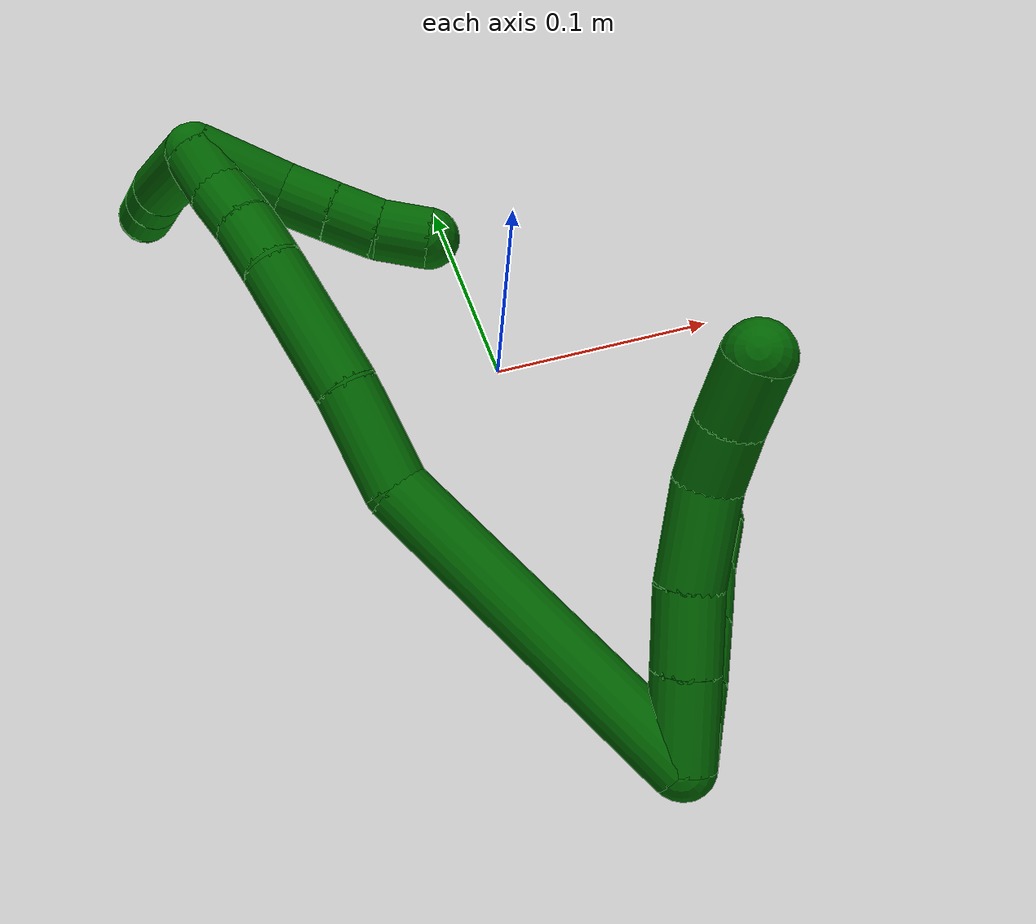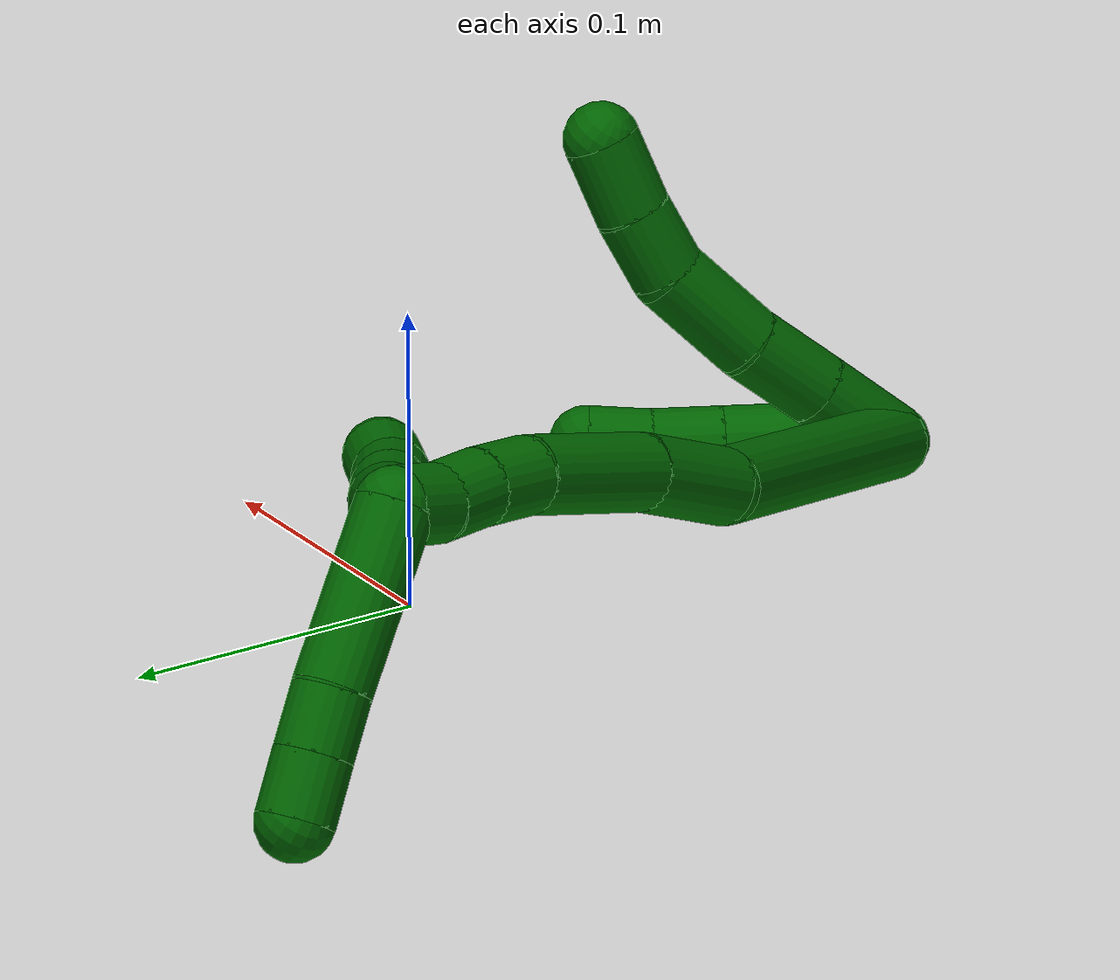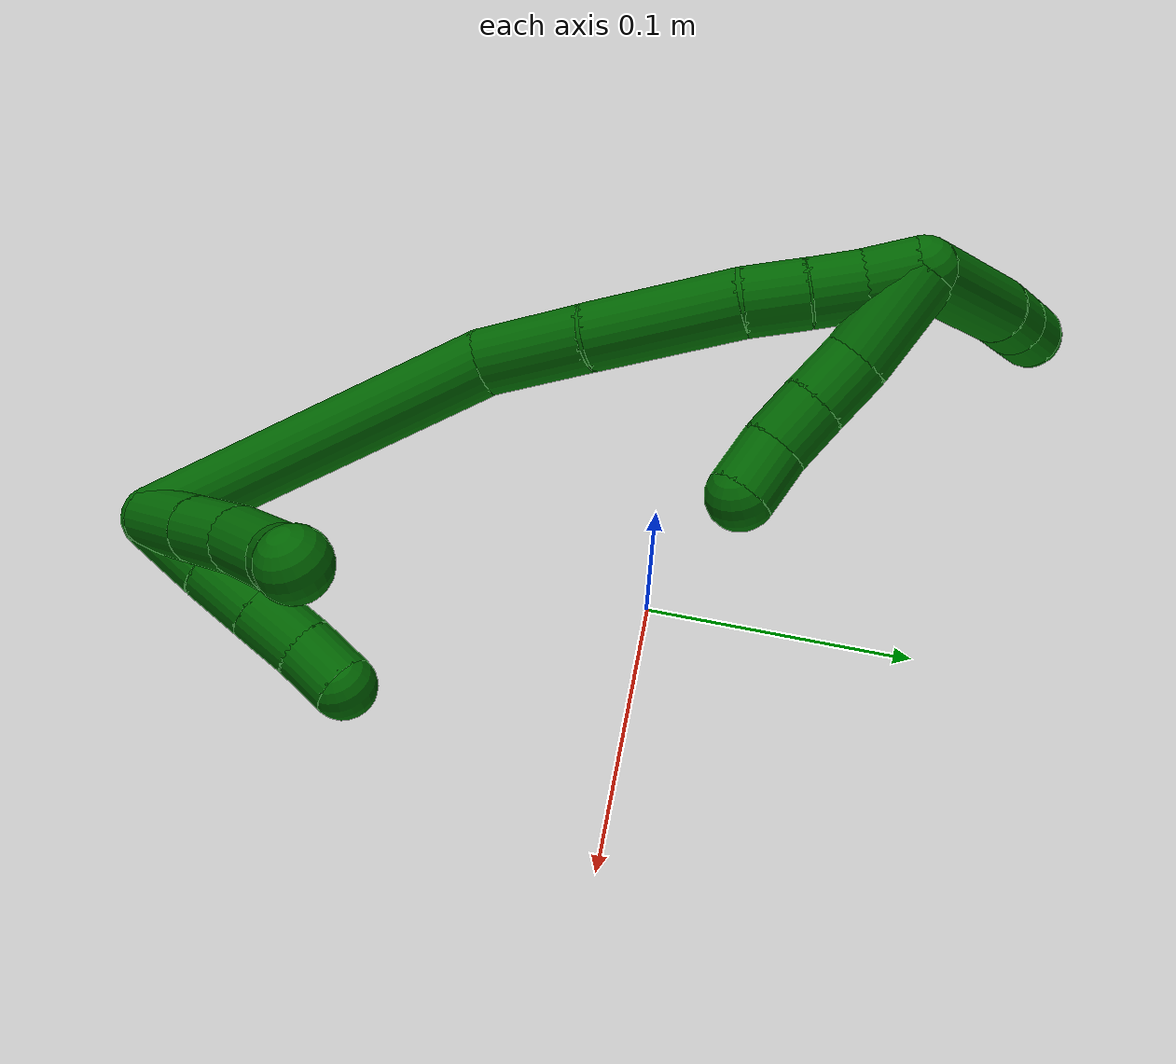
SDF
<sdf version="1.7">
 <world name="default">
  <model name="6">
   <static>0</static>
   <link name="6">
    <collision name="collision-cylinder-e_1_2_8">
     <pose>-0.00323 0.016184 0.003766 -1.34219 -0.192017 0.152642</pose>
     <geometry><cylinder><radius>0.0125</radius><length>0.033856</length></cylinder></geometry>
     <surface>
      <friction><ode><mu>1.16</mu><mu2>1.16</mu2><slip1>0</slip1><slip2>0</slip2></ode></friction>
      <contact><ode><kp>1e+06</kp><kd>1</kd><max_vel>0</max_vel><min_depth>0.001</min_depth></ode></contact>
     </surface>
    </collision>
    <visual name="visual-cylinder-e_1_2_8">
     <pose>-0.00323 0.016184 0.003766 -1.34219 -0.192017 0.152642</pose>
     <geometry><cylinder><radius>0.0125</radius><length>0.033856</length></cylinder></geometry>
     <material><ambient>0 0.392157 0.003922 1</ambient></material>
    </visual>
    <collision name="collision-cylinder-e_2_8_9">
     <pose>-0.009404 0.046649 0.010741 -1.34972 -0.198438 0.158977</pose>
     <geometry><cylinder><radius>0.0125</radius><length>0.029859</length></cylinder></geometry>
     <surface>
      <friction><ode><mu>1.16</mu><mu2>1.16</mu2><slip1>0</slip1><slip2>0</slip2></ode></friction>
      <contact><ode><kp>1e+06</kp><kd>1</kd><max_vel>0</max_vel><min_depth>0.001</min_depth></ode></contact>
     </surface>
    </collision>
    <visual name="visual-cylinder-e_2_8_9">
     <pose>-0.009404 0.046649 0.010741 -1.34972 -0.198438 0.158977</pose>
     <geometry><cylinder><radius>0.0125</radius><length>0.029859</length></cylinder></geometry>
     <material><ambient>0 0.392157 0.003922 1</ambient></material>
    </visual>
    <collision name="collision-cylinder-e_3_9_10">
     <pose>-0.013444 0.07841 0.018964 -1.29149 -0.060217 0.04538</pose>
     <geometry><cylinder><radius>0.0125</radius><length>0.036437</length></cylinder></geometry>
     <surface>
      <friction><ode><mu>1.16</mu><mu2>1.16</mu2><slip1>0</slip1><slip2>0</slip2></ode></friction>
      <contact><ode><kp>1e+06</kp><kd>1</kd><max_vel>0</max_vel><min_depth>0.001</min_depth></ode></contact>
     </surface>
    </collision>
    <visual name="visual-cylinder-e_3_9_10">
     <pose>-0.013444 0.07841 0.018964 -1.29149 -0.060217 0.04538</pose>
     <geometry><cylinder><radius>0.0125</radius><length>0.036437</length></cylinder></geometry>
     <material><ambient>0 0.392157 0.003922 1</ambient></material>
    </visual>
    <collision name="collision-cylinder-e_4_10_11">
     <pose>-0.01333 0.105925 0.030297 -1.00876 0.101678 -0.05616</pose>
     <geometry><cylinder><radius>0.0125</radius><length>0.023839</length></cylinder></geometry>
     <surface>
      <friction><ode><mu>1.16</mu><mu2>1.16</mu2><slip1>0</slip1><slip2>0</slip2></ode></friction>
      <contact><ode><kp>1e+06</kp><kd>1</kd><max_vel>0</max_vel><min_depth>0.001</min_depth></ode></contact>
     </surface>
    </collision>
    <visual name="visual-cylinder-e_4_10_11">
     <pose>-0.01333 0.105925 0.030297 -1.00876 0.101678 -0.05616</pose>
     <geometry><cylinder><radius>0.0125</radius><length>0.023839</length></cylinder></geometry>
     <material><ambient>0 0.392157 0.003922 1</ambient></material>
    </visual>
    <collision name="collision-cylinder-e_5_11_6">
     <pose>-0.010097 0.126198 0.044374 -0.922389 0.156222 -0.077752</pose>
     <geometry><cylinder><radius>0.0125</radius><length>0.02601</length></cylinder></geometry>
     <surface>
      <friction><ode><mu>1.16</mu><mu2>1.16</mu2><slip1>0</slip1><slip2>0</slip2></ode></friction>
      <contact><ode><kp>1e+06</kp><kd>1</kd><max_vel>0</max_vel><min_depth>0.001</min_depth></ode></contact>
     </surface>
    </collision>
    <visual name="visual-cylinder-e_5_11_6">
     <pose>-0.010097 0.126198 0.044374 -0.922389 0.156222 -0.077752</pose>
     <geometry><cylinder><radius>0.0125</radius><length>0.02601</length></cylinder></geometry>
     <material><ambient>0 0.392157 0.003922 1</ambient></material>
    </visual>
    <collision name="collision-cylinder-e_1_2_12">
     <pose>-0.001847 0.013509 -0.006926 -2.04454 -0.121081 0.197739</pose>
     <geometry><cylinder><radius>0.0125</radius><length>0.030585</length></cylinder></geometry>
     <surface>
      <friction><ode><mu>1.16</mu><mu2>1.16</mu2><slip1>0</slip1><slip2>0</slip2></ode></friction>
      <contact><ode><kp>1e+06</kp><kd>1</kd><max_vel>0</max_vel><min_depth>0.001</min_depth></ode></contact>
     </surface>
    </collision>
    <visual name="visual-cylinder-e_1_2_12">
     <pose>-0.001847 0.013509 -0.006926 -2.04454 -0.121081 0.197739</pose>
     <geometry><cylinder><radius>0.0125</radius><length>0.030585</length></cylinder></geometry>
     <material><ambient>0 0.392157 0.003922 1</ambient></material>
    </visual>
    <collision name="collision-cylinder-e_2_12_13">
     <pose>-0.005661 0.037738 -0.019702 -2.07038 -0.159658 0.26798</pose>
     <geometry><cylinder><radius>0.0125</radius><length>0.024741</length></cylinder></geometry>
     <surface>
      <friction><ode><mu>1.16</mu><mu2>1.16</mu2><slip1>0</slip1><slip2>0</slip2></ode></friction>
      <contact><ode><kp>1e+06</kp><kd>1</kd><max_vel>0</max_vel><min_depth>0.001</min_depth></ode></contact>
     </surface>
    </collision>
    <visual name="visual-cylinder-e_2_12_13">
     <pose>-0.005661 0.037738 -0.019702 -2.07038 -0.159658 0.26798</pose>
     <geometry><cylinder><radius>0.0125</radius><length>0.024741</length></cylinder></geometry>
     <material><ambient>0 0.392157 0.003922 1</ambient></material>
    </visual>
    <collision name="collision-cylinder-e_3_13_14">
     <pose>-0.009592 0.058641 -0.031098 -2.06941 -0.167864 0.281333</pose>
     <geometry><cylinder><radius>0.0125</radius><length>0.02352</length></cylinder></geometry>
     <surface>
      <friction><ode><mu>1.16</mu><mu2>1.16</mu2><slip1>0</slip1><slip2>0</slip2></ode></friction>
      <contact><ode><kp>1e+06</kp><kd>1</kd><max_vel>0</max_vel><min_depth>0.001</min_depth></ode></contact>
     </surface>
    </collision>
    <visual name="visual-cylinder-e_3_13_14">
     <pose>-0.009592 0.058641 -0.031098 -2.06941 -0.167864 0.281333</pose>
     <geometry><cylinder><radius>0.0125</radius><length>0.02352</length></cylinder></geometry>
     <material><ambient>0 0.392157 0.003922 1</ambient></material>
    </visual>
    <collision name="collision-cylinder-e_4_14_5">
     <pose>-0.012421 0.07838 -0.041094 -2.00679 -0.081756 0.128179</pose>
     <geometry><cylinder><radius>0.0125</radius><length>0.021154</length></cylinder></geometry>
     <surface>
      <friction><ode><mu>1.16</mu><mu2>1.16</mu2><slip1>0</slip1><slip2>0</slip2></ode></friction>
      <contact><ode><kp>1e+06</kp><kd>1</kd><max_vel>0</max_vel><min_depth>0.001</min_depth></ode></contact>
     </surface>
    </collision>
    <visual name="visual-cylinder-e_4_14_5">
     <pose>-0.012421 0.07838 -0.041094 -2.00679 -0.081756 0.128179</pose>
     <geometry><cylinder><radius>0.0125</radius><length>0.021154</length></cylinder></geometry>
     <material><ambient>0 0.392157 0.003922 1</ambient></material>
    </visual>
    <collision name="collision-cylinder-e_1_2_15">
     <pose>-0.060634 0.032746 0.010307 -1.26587 -1.05562 0.808285</pose>
     <geometry><cylinder><radius>0.0125</radius><length>0.139357</length></cylinder></geometry>
     <surface>
      <friction><ode><mu>1.16</mu><mu2>1.16</mu2><slip1>0</slip1><slip2>0</slip2></ode></friction>
      <contact><ode><kp>1e+06</kp><kd>1</kd><max_vel>0</max_vel><min_depth>0.001</min_depth></ode></contact>
     </surface>
    </collision>
    <visual name="visual-cylinder-e_1_2_15">
     <pose>-0.060634 0.032746 0.010307 -1.26587 -1.05562 0.808285</pose>
     <geometry><cylinder><radius>0.0125</radius><length>0.139357</length></cylinder></geometry>
     <material><ambient>0 0.392157 0.003922 1</ambient></material>
    </visual>
    <collision name="collision-cylinder-e_2_15_16">
     <pose>-0.135059 0.080854 0.023427 -1.38964 -0.723352 0.610898</pose>
     <geometry><cylinder><radius>0.0125</radius><length>0.041668</length></cylinder></geometry>
     <surface>
      <friction><ode><mu>1.16</mu><mu2>1.16</mu2><slip1>0</slip1><slip2>0</slip2></ode></friction>
      <contact><ode><kp>1e+06</kp><kd>1</kd><max_vel>0</max_vel><min_depth>0.001</min_depth></ode></contact>
     </surface>
    </collision>
    <visual name="visual-cylinder-e_2_15_16">
     <pose>-0.135059 0.080854 0.023427 -1.38964 -0.723352 0.610898</pose>
     <geometry><cylinder><radius>0.0125</radius><length>0.041668</length></cylinder></geometry>
     <material><ambient>0 0.392157 0.003922 1</ambient></material>
    </visual>
    <collision name="collision-cylinder-e_3_16_17">
     <pose>-0.169664 0.115195 0.027818 -1.48785 -0.829781 0.770232</pose>
     <geometry><cylinder><radius>0.0125</radius><length>0.056426</length></cylinder></geometry>
     <surface>
      <friction><ode><mu>1.16</mu><mu2>1.16</mu2><slip1>0</slip1><slip2>0</slip2></ode></friction>
      <contact><ode><kp>1e+06</kp><kd>1</kd><max_vel>0</max_vel><min_depth>0.001</min_depth></ode></contact>
     </surface>
    </collision>
    <visual name="visual-cylinder-e_3_16_17">
     <pose>-0.169664 0.115195 0.027818 -1.48785 -0.829781 0.770232</pose>
     <geometry><cylinder><radius>0.0125</radius><length>0.056426</length></cylinder></geometry>
     <material><ambient>0 0.392157 0.003922 1</ambient></material>
    </visual>
    <collision name="collision-cylinder-e_4_17_18">
     <pose>-0.199217 0.141222 0.028411 -1.70969 -0.887383 1.00009</pose>
     <geometry><cylinder><radius>0.0125</radius><length>0.022538</length></cylinder></geometry>
     <surface>
      <friction><ode><mu>1.16</mu><mu2>1.16</mu2><slip1>0</slip1><slip2>0</slip2></ode></friction>
      <contact><ode><kp>1e+06</kp><kd>1</kd><max_vel>0</max_vel><min_depth>0.001</min_depth></ode></contact>
     </surface>
    </collision>
    <visual name="visual-cylinder-e_4_17_18">
     <pose>-0.199217 0.141222 0.028411 -1.70969 -0.887383 1.00009</pose>
     <geometry><cylinder><radius>0.0125</radius><length>0.022538</length></cylinder></geometry>
     <material><ambient>0 0.392157 0.003922 1</ambient></material>
    </visual>
    <collision name="collision-cylinder-e_5_18_19">
     <pose>-0.216135 0.153897 0.026227 -1.7807 -0.957698 1.14062</pose>
     <geometry><cylinder><radius>0.0125</radius><length>0.020003</length></cylinder></geometry>
     <surface>
      <friction><ode><mu>1.16</mu><mu2>1.16</mu2><slip1>0</slip1><slip2>0</slip2></ode></friction>
      <contact><ode><kp>1e+06</kp><kd>1</kd><max_vel>0</max_vel><min_depth>0.001</min_depth></ode></contact>
     </surface>
    </collision>
    <visual name="visual-cylinder-e_5_18_19">
     <pose>-0.216135 0.153897 0.026227 -1.7807 -0.957698 1.14062</pose>
     <geometry><cylinder><radius>0.0125</radius><length>0.020003</length></cylinder></geometry>
     <material><ambient>0 0.392157 0.003922 1</ambient></material>
    </visual>
    <collision name="collision-cylinder-e_6_19_1">
     <pose>-0.231843 0.166105 0.025403 -1.51383 -0.851729 0.809651</pose>
     <geometry><cylinder><radius>0.0125</radius><length>0.020009</length></cylinder></geometry>
     <surface>
      <friction><ode><mu>1.16</mu><mu2>1.16</mu2><slip1>0</slip1><slip2>0</slip2></ode></friction>
      <contact><ode><kp>1e+06</kp><kd>1</kd><max_vel>0</max_vel><min_depth>0.001</min_depth></ode></contact>
     </surface>
    </collision>
    <visual name="visual-cylinder-e_6_19_1">
     <pose>-0.231843 0.166105 0.025403 -1.51383 -0.851729 0.809651</pose>
     <geometry><cylinder><radius>0.0125</radius><length>0.020009</length></cylinder></geometry>
     <material><ambient>0 0.392157 0.003922 1</ambient></material>
    </visual>
    <collision name="collision-cylinder-e_1_1_20">
     <pose>-0.22291 0.170766 0.016851 2.92999 1.06433 2.78472</pose>
     <geometry><cylinder><radius>0.0125</radius><length>0.037645</length></cylinder></geometry>
     <surface>
      <friction><ode><mu>1.16</mu><mu2>1.16</mu2><slip1>0</slip1><slip2>0</slip2></ode></friction>
      <contact><ode><kp>1e+06</kp><kd>1</kd><max_vel>0</max_vel><min_depth>0.001</min_depth></ode></contact>
     </surface>
    </collision>
    <visual name="visual-cylinder-e_1_1_20">
     <pose>-0.22291 0.170766 0.016851 2.92999 1.06433 2.78472</pose>
     <geometry><cylinder><radius>0.0125</radius><length>0.037645</length></cylinder></geometry>
     <material><ambient>0 0.392157 0.003922 1</ambient></material>
    </visual>
    <collision name="collision-cylinder-e_2_20_21">
     <pose>-0.196446 0.167807 0.004579 2.83989 1.23399 2.71942</pose>
     <geometry><cylinder><radius>0.0125</radius><length>0.021201</length></cylinder></geometry>
     <surface>
      <friction><ode><mu>1.16</mu><mu2>1.16</mu2><slip1>0</slip1><slip2>0</slip2></ode></friction>
      <contact><ode><kp>1e+06</kp><kd>1</kd><max_vel>0</max_vel><min_depth>0.001</min_depth></ode></contact>
     </surface>
    </collision>
    <visual name="visual-cylinder-e_2_20_21">
     <pose>-0.196446 0.167807 0.004579 2.83989 1.23399 2.71942</pose>
     <geometry><cylinder><radius>0.0125</radius><length>0.021201</length></cylinder></geometry>
     <material><ambient>0 0.392157 0.003922 1</ambient></material>
    </visual>
    <collision name="collision-cylinder-e_3_21_22">
     <pose>-0.17685 0.165962 -0.002032 2.9002 1.23343 2.80272</pose>
     <geometry><cylinder><radius>0.0125</radius><length>0.020328</length></cylinder></geometry>
     <surface>
      <friction><ode><mu>1.16</mu><mu2>1.16</mu2><slip1>0</slip1><slip2>0</slip2></ode></friction>
      <contact><ode><kp>1e+06</kp><kd>1</kd><max_vel>0</max_vel><min_depth>0.001</min_depth></ode></contact>
     </surface>
    </collision>
    <visual name="visual-cylinder-e_3_21_22">
     <pose>-0.17685 0.165962 -0.002032 2.9002 1.23343 2.80272</pose>
     <geometry><cylinder><radius>0.0125</radius><length>0.020328</length></cylinder></geometry>
     <material><ambient>0 0.392157 0.003922 1</ambient></material>
    </visual>
    <collision name="collision-cylinder-e_4_22_4">
     <pose>-0.15735 0.166238 -0.008312 -2.79717 1.25835 -2.67246</pose>
     <geometry><cylinder><radius>0.0125</radius><length>0.020826</length></cylinder></geometry>
     <surface>
      <friction><ode><mu>1.16</mu><mu2>1.16</mu2><slip1>0</slip1><slip2>0</slip2></ode></friction>
      <contact><ode><kp>1e+06</kp><kd>1</kd><max_vel>0</max_vel><min_depth>0.001</min_depth></ode></contact>
     </surface>
    </collision>
    <visual name="visual-cylinder-e_4_22_4">
     <pose>-0.15735 0.166238 -0.008312 -2.79717 1.25835 -2.67246</pose>
     <geometry><cylinder><radius>0.0125</radius><length>0.020826</length></cylinder></geometry>
     <material><ambient>0 0.392157 0.003922 1</ambient></material>
    </visual>
    <collision name="collision-cylinder-e_1_1_23">
     <pose>-0.258803 0.169458 0.003847 2.99557 -0.719757 -2.7576</pose>
     <geometry><cylinder><radius>0.0125</radius><length>0.058958</length></cylinder></geometry>
     <surface>
      <friction><ode><mu>1.16</mu><mu2>1.16</mu2><slip1>0</slip1><slip2>0</slip2></ode></friction>
      <contact><ode><kp>1e+06</kp><kd>1</kd><max_vel>0</max_vel><min_depth>0.001</min_depth></ode></contact>
     </surface>
    </collision>
    <visual name="visual-cylinder-e_1_1_23">
     <pose>-0.258803 0.169458 0.003847 2.99557 -0.719757 -2.7576</pose>
     <geometry><cylinder><radius>0.0125</radius><length>0.058958</length></cylinder></geometry>
     <material><ambient>0 0.392157 0.003922 1</ambient></material>
    </visual>
    <collision name="collision-cylinder-e_2_23_24">
     <pose>-0.284388 0.164494 -0.026029 2.92616 -0.647617 -2.5182</pose>
     <geometry><cylinder><radius>0.0125</radius><length>0.020395</length></cylinder></geometry>
     <surface>
      <friction><ode><mu>1.16</mu><mu2>1.16</mu2><slip1>0</slip1><slip2>0</slip2></ode></friction>
      <contact><ode><kp>1e+06</kp><kd>1</kd><max_vel>0</max_vel><min_depth>0.001</min_depth></ode></contact>
     </surface>
    </collision>
    <visual name="visual-cylinder-e_2_23_24">
     <pose>-0.284388 0.164494 -0.026029 2.92616 -0.647617 -2.5182</pose>
     <geometry><cylinder><radius>0.0125</radius><length>0.020395</length></cylinder></geometry>
     <material><ambient>0 0.392157 0.003922 1</ambient></material>
    </visual>
    <collision name="collision-cylinder-e_3_24_3">
     <pose>-0.296752 0.160882 -0.042003 2.91238 -0.645788 -2.47893</pose>
     <geometry><cylinder><radius>0.0125</radius><length>0.020646</length></cylinder></geometry>
     <surface>
      <friction><ode><mu>1.16</mu><mu2>1.16</mu2><slip1>0</slip1><slip2>0</slip2></ode></friction>
      <contact><ode><kp>1e+06</kp><kd>1</kd><max_vel>0</max_vel><min_depth>0.001</min_depth></ode></contact>
     </surface>
    </collision>
    <visual name="visual-cylinder-e_3_24_3">
     <pose>-0.296752 0.160882 -0.042003 2.91238 -0.645788 -2.47893</pose>
     <geometry><cylinder><radius>0.0125</radius><length>0.020646</length></cylinder></geometry>
     <material><ambient>0 0.392157 0.003922 1</ambient></material>
    </visual>
    <collision name="collision-sphere-3">
     <pose>-0.302965 0.159009 -0.050032 0 -0 0</pose>
     <geometry><sphere><radius>0.0125</radius></sphere></geometry>
     <surface>
      <friction><ode><mu>1.16</mu><mu2>1.16</mu2><slip1>0</slip1><slip2>0</slip2></ode></friction>
      <contact><ode><kp>1e+06</kp><kd>1</kd><max_vel>0</max_vel><min_depth>0.001</min_depth></ode></contact>
     </surface>
    </collision>
    <visual name="visual-sphere-3">
     <pose>-0.302965 0.159009 -0.050032 0 -0 0</pose>
     <geometry><sphere><radius>0.0125</radius></sphere></geometry>
     <material><ambient>0 0.392157 0.003922 1</ambient></material>
    </visual>
    <collision name="collision-sphere-24">
     <pose>-0.29054 0.162755 -0.033974 0 -0 0</pose>
     <geometry><sphere><radius>0.0125</radius></sphere></geometry>
     <surface>
      <friction><ode><mu>1.16</mu><mu2>1.16</mu2><slip1>0</slip1><slip2>0</slip2></ode></friction>
      <contact><ode><kp>1e+06</kp><kd>1</kd><max_vel>0</max_vel><min_depth>0.001</min_depth></ode></contact>
     </surface>
    </collision>
    <visual name="visual-sphere-24">
     <pose>-0.29054 0.162755 -0.033974 0 -0 0</pose>
     <geometry><sphere><radius>0.0125</radius></sphere></geometry>
     <material><ambient>0 0.392157 0.003922 1</ambient></material>
    </visual>
    <collision name="collision-sphere-23">
     <pose>-0.278236 0.166233 -0.018085 0 -0 0</pose>
     <geometry><sphere><radius>0.0125</radius></sphere></geometry>
     <surface>
      <friction><ode><mu>1.16</mu><mu2>1.16</mu2><slip1>0</slip1><slip2>0</slip2></ode></friction>
      <contact><ode><kp>1e+06</kp><kd>1</kd><max_vel>0</max_vel><min_depth>0.001</min_depth></ode></contact>
     </surface>
    </collision>
    <visual name="visual-sphere-23">
     <pose>-0.278236 0.166233 -0.018085 0 -0 0</pose>
     <geometry><sphere><radius>0.0125</radius></sphere></geometry>
     <material><ambient>0 0.392157 0.003922 1</ambient></material>
    </visual>
    <collision name="collision-sphere-4">
     <pose>-0.147441 0.167319 -0.011325 0 -0 0</pose>
     <geometry><sphere><radius>0.0125</radius></sphere></geometry>
     <surface>
      <friction><ode><mu>1.16</mu><mu2>1.16</mu2><slip1>0</slip1><slip2>0</slip2></ode></friction>
      <contact><ode><kp>1e+06</kp><kd>1</kd><max_vel>0</max_vel><min_depth>0.001</min_depth></ode></contact>
     </surface>
    </collision>
    <visual name="visual-sphere-4">
     <pose>-0.147441 0.167319 -0.011325 0 -0 0</pose>
     <geometry><sphere><radius>0.0125</radius></sphere></geometry>
     <material><ambient>0 0.392157 0.003922 1</ambient></material>
    </visual>
    <collision name="collision-sphere-22">
     <pose>-0.167259 0.165158 -0.005299 0 -0 0</pose>
     <geometry><sphere><radius>0.0125</radius></sphere></geometry>
     <surface>
      <friction><ode><mu>1.16</mu><mu2>1.16</mu2><slip1>0</slip1><slip2>0</slip2></ode></friction>
      <contact><ode><kp>1e+06</kp><kd>1</kd><max_vel>0</max_vel><min_depth>0.001</min_depth></ode></contact>
     </surface>
    </collision>
    <visual name="visual-sphere-22">
     <pose>-0.167259 0.165158 -0.005299 0 -0 0</pose>
     <geometry><sphere><radius>0.0125</radius></sphere></geometry>
     <material><ambient>0 0.392157 0.003922 1</ambient></material>
    </visual>
    <collision name="collision-sphere-21">
     <pose>-0.186441 0.166766 0.001234 0 -0 0</pose>
     <geometry><sphere><radius>0.0125</radius></sphere></geometry>
     <surface>
      <friction><ode><mu>1.16</mu><mu2>1.16</mu2><slip1>0</slip1><slip2>0</slip2></ode></friction>
      <contact><ode><kp>1e+06</kp><kd>1</kd><max_vel>0</max_vel><min_depth>0.001</min_depth></ode></contact>
     </surface>
    </collision>
    <visual name="visual-sphere-21">
     <pose>-0.186441 0.166766 0.001234 0 -0 0</pose>
     <geometry><sphere><radius>0.0125</radius></sphere></geometry>
     <material><ambient>0 0.392157 0.003922 1</ambient></material>
    </visual>
    <collision name="collision-sphere-20">
     <pose>-0.206451 0.168848 0.007924 0 -0 0</pose>
     <geometry><sphere><radius>0.0125</radius></sphere></geometry>
     <surface>
      <friction><ode><mu>1.16</mu><mu2>1.16</mu2><slip1>0</slip1><slip2>0</slip2></ode></friction>
      <contact><ode><kp>1e+06</kp><kd>1</kd><max_vel>0</max_vel><min_depth>0.001</min_depth></ode></contact>
     </surface>
    </collision>
    <visual name="visual-sphere-20">
     <pose>-0.206451 0.168848 0.007924 0 -0 0</pose>
     <geometry><sphere><radius>0.0125</radius></sphere></geometry>
     <material><ambient>0 0.392157 0.003922 1</ambient></material>
    </visual>
    <collision name="collision-sphere-6">
     <pose>-0.008074 0.136437 0.052132 0 -0 0</pose>
     <geometry><sphere><radius>0.0125</radius></sphere></geometry>
     <surface>
      <friction><ode><mu>1.16</mu><mu2>1.16</mu2><slip1>0</slip1><slip2>0</slip2></ode></friction>
      <contact><ode><kp>1e+06</kp><kd>1</kd><max_vel>0</max_vel><min_depth>0.001</min_depth></ode></contact>
     </surface>
    </collision>
    <visual name="visual-sphere-6">
     <pose>-0.008074 0.136437 0.052132 0 -0 0</pose>
     <geometry><sphere><radius>0.0125</radius></sphere></geometry>
     <material><ambient>0 0.392157 0.003922 1</ambient></material>
    </visual>
    <collision name="collision-sphere-11">
     <pose>-0.01212 0.115958 0.036616 0 -0 0</pose>
     <geometry><sphere><radius>0.0125</radius></sphere></geometry>
     <surface>
      <friction><ode><mu>1.16</mu><mu2>1.16</mu2><slip1>0</slip1><slip2>0</slip2></ode></friction>
      <contact><ode><kp>1e+06</kp><kd>1</kd><max_vel>0</max_vel><min_depth>0.001</min_depth></ode></contact>
     </surface>
    </collision>
    <visual name="visual-sphere-11">
     <pose>-0.01212 0.115958 0.036616 0 -0 0</pose>
     <geometry><sphere><radius>0.0125</radius></sphere></geometry>
     <material><ambient>0 0.392157 0.003922 1</ambient></material>
    </visual>
    <collision name="collision-sphere-10">
     <pose>-0.01454 0.095891 0.023977 0 -0 0</pose>
     <geometry><sphere><radius>0.0125</radius></sphere></geometry>
     <surface>
      <friction><ode><mu>1.16</mu><mu2>1.16</mu2><slip1>0</slip1><slip2>0</slip2></ode></friction>
      <contact><ode><kp>1e+06</kp><kd>1</kd><max_vel>0</max_vel><min_depth>0.001</min_depth></ode></contact>
     </surface>
    </collision>
    <visual name="visual-sphere-10">
     <pose>-0.01454 0.095891 0.023977 0 -0 0</pose>
     <geometry><sphere><radius>0.0125</radius></sphere></geometry>
     <material><ambient>0 0.392157 0.003922 1</ambient></material>
    </visual>
    <collision name="collision-sphere-9">
     <pose>-0.012347 0.060929 0.01395 0 -0 0</pose>
     <geometry><sphere><radius>0.0125</radius></sphere></geometry>
     <surface>
      <friction><ode><mu>1.16</mu><mu2>1.16</mu2><slip1>0</slip1><slip2>0</slip2></ode></friction>
      <contact><ode><kp>1e+06</kp><kd>1</kd><max_vel>0</max_vel><min_depth>0.001</min_depth></ode></contact>
     </surface>
    </collision>
    <visual name="visual-sphere-9">
     <pose>-0.012347 0.060929 0.01395 0 -0 0</pose>
     <geometry><sphere><radius>0.0125</radius></sphere></geometry>
     <material><ambient>0 0.392157 0.003922 1</ambient></material>
    </visual>
    <collision name="collision-sphere-2">
     <geometry><sphere><radius>0.0125</radius></sphere></geometry>
     <surface>
      <friction><ode><mu>1.16</mu><mu2>1.16</mu2><slip1>0</slip1><slip2>0</slip2></ode></friction>
      <contact><ode><kp>1e+06</kp><kd>1</kd><max_vel>0</max_vel><min_depth>0.001</min_depth></ode></contact>
     </surface>
    </collision>
    <visual name="visual-sphere-2">
     <geometry><sphere><radius>0.0125</radius></sphere></geometry>
     <material><ambient>0 0.392157 0.003922 1</ambient></material>
    </visual>
    <collision name="collision-sphere-19">
     <pose>-0.224315 0.159526 0.025028 0 -0 0</pose>
     <geometry><sphere><radius>0.0125</radius></sphere></geometry>
     <surface>
      <friction><ode><mu>1.16</mu><mu2>1.16</mu2><slip1>0</slip1><slip2>0</slip2></ode></friction>
      <contact><ode><kp>1e+06</kp><kd>1</kd><max_vel>0</max_vel><min_depth>0.001</min_depth></ode></contact>
     </surface>
    </collision>
    <visual name="visual-sphere-19">
     <pose>-0.224315 0.159526 0.025028 0 -0 0</pose>
     <geometry><sphere><radius>0.0125</radius></sphere></geometry>
     <material><ambient>0 0.392157 0.003922 1</ambient></material>
    </visual>
    <collision name="collision-sphere-8">
     <pose>-0.006461 0.032369 0.007531 0 -0 0</pose>
     <geometry><sphere><radius>0.0125</radius></sphere></geometry>
     <surface>
      <friction><ode><mu>1.16</mu><mu2>1.16</mu2><slip1>0</slip1><slip2>0</slip2></ode></friction>
      <contact><ode><kp>1e+06</kp><kd>1</kd><max_vel>0</max_vel><min_depth>0.001</min_depth></ode></contact>
     </surface>
    </collision>
    <visual name="visual-sphere-8">
     <pose>-0.006461 0.032369 0.007531 0 -0 0</pose>
     <geometry><sphere><radius>0.0125</radius></sphere></geometry>
     <material><ambient>0 0.392157 0.003922 1</ambient></material>
    </visual>
    <collision name="collision-sphere-12">
     <pose>-0.003694 0.027017 -0.013851 0 -0 0</pose>
     <geometry><sphere><radius>0.0125</radius></sphere></geometry>
     <surface>
      <friction><ode><mu>1.16</mu><mu2>1.16</mu2><slip1>0</slip1><slip2>0</slip2></ode></friction>
      <contact><ode><kp>1e+06</kp><kd>1</kd><max_vel>0</max_vel><min_depth>0.001</min_depth></ode></contact>
     </surface>
    </collision>
    <visual name="visual-sphere-12">
     <pose>-0.003694 0.027017 -0.013851 0 -0 0</pose>
     <geometry><sphere><radius>0.0125</radius></sphere></geometry>
     <material><ambient>0 0.392157 0.003922 1</ambient></material>
    </visual>
    <collision name="collision-sphere-13">
     <pose>-0.007627 0.048458 -0.025553 0 -0 0</pose>
     <geometry><sphere><radius>0.0125</radius></sphere></geometry>
     <surface>
      <friction><ode><mu>1.16</mu><mu2>1.16</mu2><slip1>0</slip1><slip2>0</slip2></ode></friction>
      <contact><ode><kp>1e+06</kp><kd>1</kd><max_vel>0</max_vel><min_depth>0.001</min_depth></ode></contact>
     </surface>
    </collision>
    <visual name="visual-sphere-13">
     <pose>-0.007627 0.048458 -0.025553 0 -0 0</pose>
     <geometry><sphere><radius>0.0125</radius></sphere></geometry>
     <material><ambient>0 0.392157 0.003922 1</ambient></material>
    </visual>
    <collision name="collision-sphere-14">
     <pose>-0.011557 0.068824 -0.036642 0 -0 0</pose>
     <geometry><sphere><radius>0.0125</radius></sphere></geometry>
     <surface>
      <friction><ode><mu>1.16</mu><mu2>1.16</mu2><slip1>0</slip1><slip2>0</slip2></ode></friction>
      <contact><ode><kp>1e+06</kp><kd>1</kd><max_vel>0</max_vel><min_depth>0.001</min_depth></ode></contact>
     </surface>
    </collision>
    <visual name="visual-sphere-14">
     <pose>-0.011557 0.068824 -0.036642 0 -0 0</pose>
     <geometry><sphere><radius>0.0125</radius></sphere></geometry>
     <material><ambient>0 0.392157 0.003922 1</ambient></material>
    </visual>
    <collision name="collision-sphere-5">
     <pose>-0.013285 0.087935 -0.045546 0 -0 0</pose>
     <geometry><sphere><radius>0.0125</radius></sphere></geometry>
     <surface>
      <friction><ode><mu>1.16</mu><mu2>1.16</mu2><slip1>0</slip1><slip2>0</slip2></ode></friction>
      <contact><ode><kp>1e+06</kp><kd>1</kd><max_vel>0</max_vel><min_depth>0.001</min_depth></ode></contact>
     </surface>
    </collision>
    <visual name="visual-sphere-5">
     <pose>-0.013285 0.087935 -0.045546 0 -0 0</pose>
     <geometry><sphere><radius>0.0125</radius></sphere></geometry>
     <material><ambient>0 0.392157 0.003922 1</ambient></material>
    </visual>
    <collision name="collision-sphere-15">
     <pose>-0.121269 0.065493 0.020613 0 -0 0</pose>
     <geometry><sphere><radius>0.0125</radius></sphere></geometry>
     <surface>
      <friction><ode><mu>1.16</mu><mu2>1.16</mu2><slip1>0</slip1><slip2>0</slip2></ode></friction>
      <contact><ode><kp>1e+06</kp><kd>1</kd><max_vel>0</max_vel><min_depth>0.001</min_depth></ode></contact>
     </surface>
    </collision>
    <visual name="visual-sphere-15">
     <pose>-0.121269 0.065493 0.020613 0 -0 0</pose>
     <geometry><sphere><radius>0.0125</radius></sphere></geometry>
     <material><ambient>0 0.392157 0.003922 1</ambient></material>
    </visual>
    <collision name="collision-sphere-16">
     <pose>-0.148849 0.096216 0.02624 0 -0 0</pose>
     <geometry><sphere><radius>0.0125</radius></sphere></geometry>
     <surface>
      <friction><ode><mu>1.16</mu><mu2>1.16</mu2><slip1>0</slip1><slip2>0</slip2></ode></friction>
      <contact><ode><kp>1e+06</kp><kd>1</kd><max_vel>0</max_vel><min_depth>0.001</min_depth></ode></contact>
     </surface>
    </collision>
    <visual name="visual-sphere-16">
     <pose>-0.148849 0.096216 0.02624 0 -0 0</pose>
     <geometry><sphere><radius>0.0125</radius></sphere></geometry>
     <material><ambient>0 0.392157 0.003922 1</ambient></material>
    </visual>
    <collision name="collision-sphere-17">
     <pose>-0.190479 0.134174 0.029396 0 -0 0</pose>
     <geometry><sphere><radius>0.0125</radius></sphere></geometry>
     <surface>
      <friction><ode><mu>1.16</mu><mu2>1.16</mu2><slip1>0</slip1><slip2>0</slip2></ode></friction>
      <contact><ode><kp>1e+06</kp><kd>1</kd><max_vel>0</max_vel><min_depth>0.001</min_depth></ode></contact>
     </surface>
    </collision>
    <visual name="visual-sphere-17">
     <pose>-0.190479 0.134174 0.029396 0 -0 0</pose>
     <geometry><sphere><radius>0.0125</radius></sphere></geometry>
     <material><ambient>0 0.392157 0.003922 1</ambient></material>
    </visual>
    <collision name="collision-sphere-18">
     <pose>-0.207956 0.148269 0.027426 0 -0 0</pose>
     <geometry><sphere><radius>0.0125</radius></sphere></geometry>
     <surface>
      <friction><ode><mu>1.16</mu><mu2>1.16</mu2><slip1>0</slip1><slip2>0</slip2></ode></friction>
      <contact><ode><kp>1e+06</kp><kd>1</kd><max_vel>0</max_vel><min_depth>0.001</min_depth></ode></contact>
     </surface>
    </collision>
    <visual name="visual-sphere-18">
     <pose>-0.207956 0.148269 0.027426 0 -0 0</pose>
     <geometry><sphere><radius>0.0125</radius></sphere></geometry>
     <material><ambient>0 0.392157 0.003922 1</ambient></material>
    </visual>
    <collision name="collision-sphere-1">
     <pose>-0.23937 0.172684 0.025778 0 -0 0</pose>
     <geometry><sphere><radius>0.0125</radius></sphere></geometry>
     <surface>
      <friction><ode><mu>1.16</mu><mu2>1.16</mu2><slip1>0</slip1><slip2>0</slip2></ode></friction>
      <contact><ode><kp>1e+06</kp><kd>1</kd><max_vel>0</max_vel><min_depth>0.001</min_depth></ode></contact>
     </surface>
    </collision>
    <visual name="visual-sphere-1">
     <pose>-0.23937 0.172684 0.025778 0 -0 0</pose>
     <geometry><sphere><radius>0.0125</radius></sphere></geometry>
     <material><ambient>0 0.392157 0.003922 1</ambient></material>
    </visual>
    <inertial>
     <pose>-0.114483 0.096661 0.007622 0 -0 0</pose>
     <mass>0.75</mass>
     <inertia><ixx>0.000176</ixx><ixy>0</ixy><ixz>0</ixz><iyy>0.00036</iyy><iyz>0</iyz><izz>7.4e-05</izz></inertia>
    </inertial>
   </link>
   <pose>0.003787 -0.188668 0.011496 0.509086 -0.109886 -0.661016</pose>
  </model>
 </world>
</sdf>
